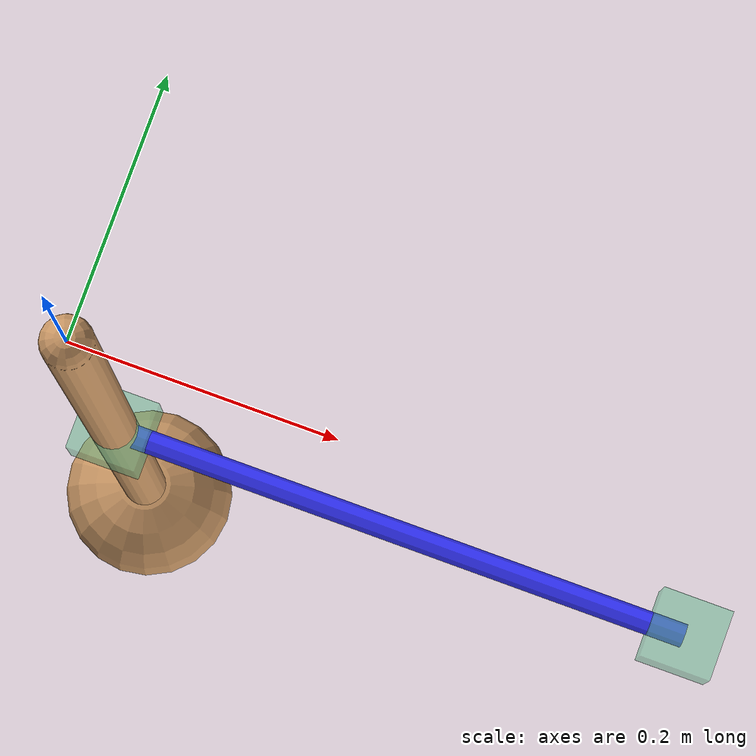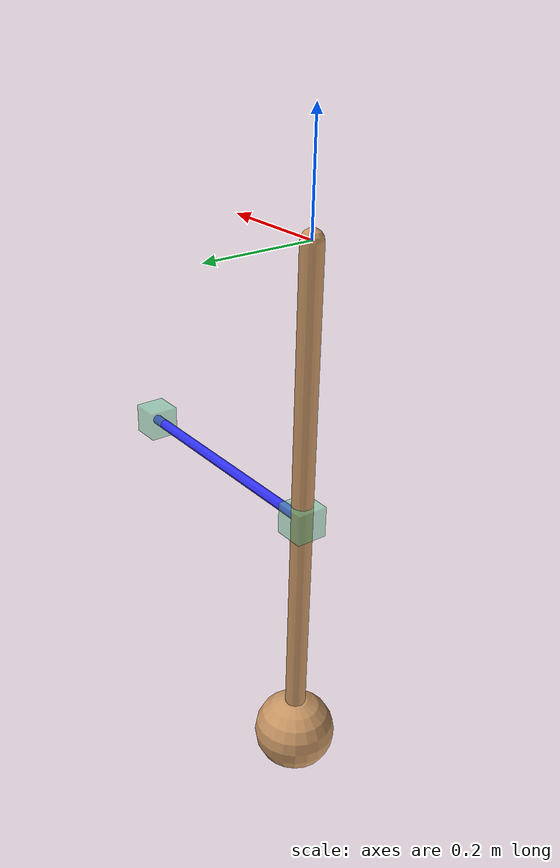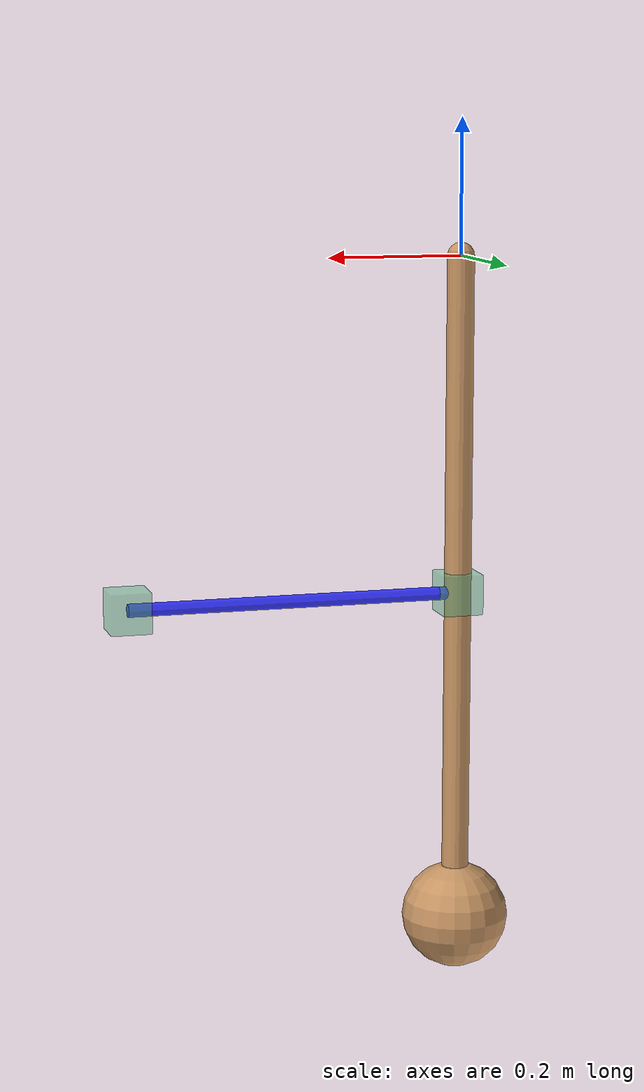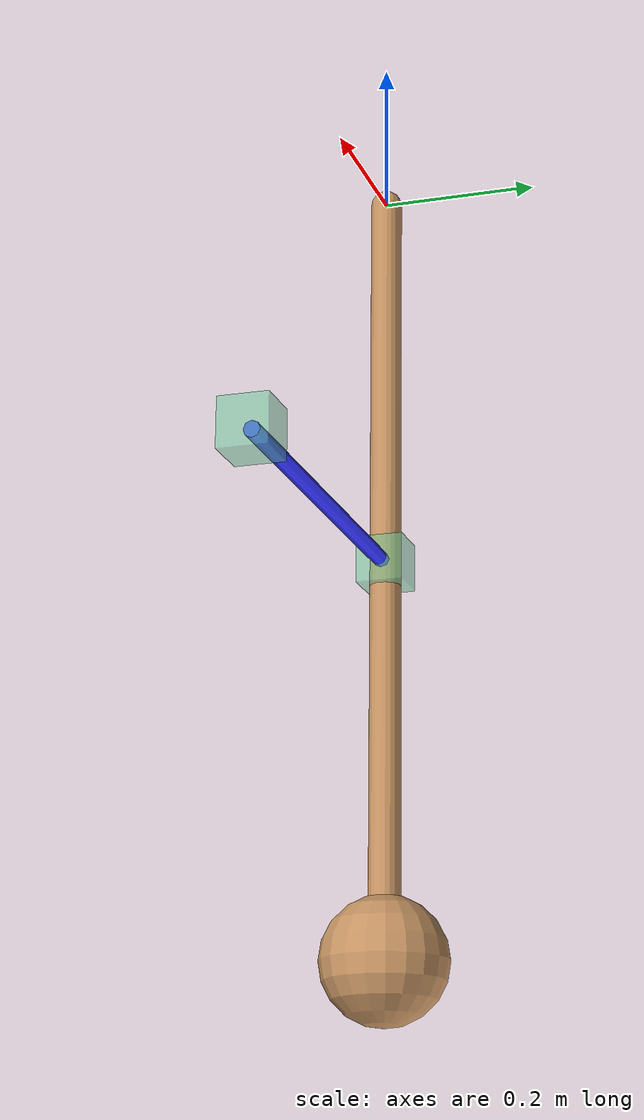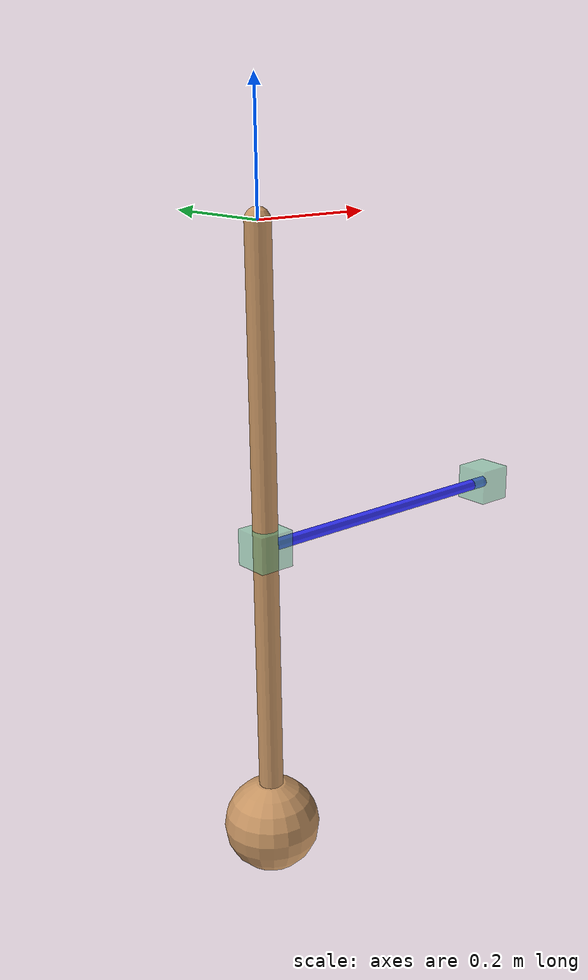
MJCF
<mujoco>
  <option integrator="RK4" timestep="0.0001">
    <flag contact="disable" gravity="disable" energy="enable"/>
  </option>

  <default>
    <geom rgba="0.8 0.6 .4 1"/>
    <site rgba="0.4 0.8 .6 .5"/>
  </default>

  <worldbody>
    <site name="tendon" type="box" size=".03 .03 .03" pos=".5 0 -.5"/>
    <body name="link1" pos="0 0 0">
      <joint name="link1" axis="0 -1 0" stiffness="100" springref="90"/>
      <geom type="capsule" size=".02" fromto="0 0 0 0 0 -1"/>
      <geom name="query" type="sphere" size=".08" pos="0 0 -1"/>
      <site name="link1" type="box" size=".03 .03 .03" pos="0 0 -.5"/>
      <site name="acc1" pos="0 0 -1"/>
    </body>
  </worldbody>

  <tendon>
    <spatial width=".01" rgba=".2 .2 1 1" armature="9">
      <site site="link1"/>
      <site site="tendon"/>
    </spatial>
  </tendon>
</mujoco>
